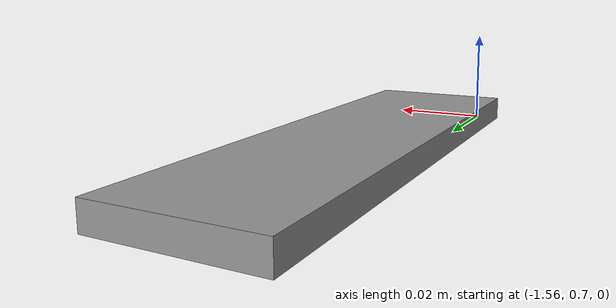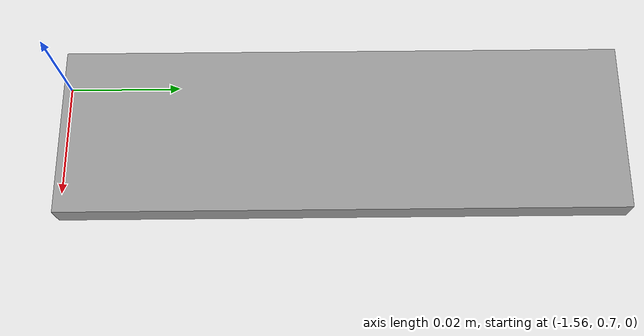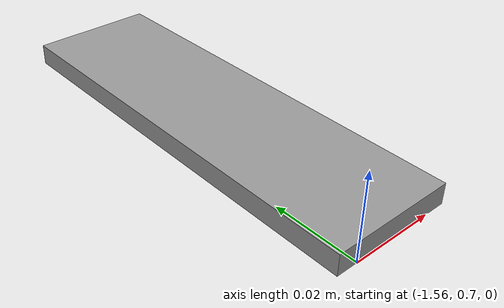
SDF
<sdf version='1.7'>
  <model name='traffic_light'>
    <joint name='base_joint' type='fixed'>
      <pose relative_to='__model__'>-1.55 0.75 0.0025 0 -0 1.57</pose>
      <parent>world</parent>
      <child>base_link</child>
    </joint>
    <link name='base_link'>
      <pose relative_to='base_joint'>0 0 0 0 -0 0</pose>
      <inertial>
        <pose>0 0 0 0 -0 0</pose>
        <mass>0.1</mass>
        <inertia>
          <ixx>0.0001</ixx>
          <ixy>0</ixy>
          <ixz>0</ixz>
          <iyy>0.0001</iyy>
          <iyz>0</iyz>
          <izz>0.0001</izz>
        </inertia>
      </inertial>
      <collision name='base_link_collision'>
        <pose>0 0 0 0 -0 0</pose>
        <geometry>
          <box>
            <size>0.1 0.03 0.005</size>
          </box>
        </geometry>
        <surface>
          <contact>
            <ode/>
          </contact>
          <friction>
            <ode/>
          </friction>
        </surface>
      </collision>
      <visual name='base_link_visual'>
        <pose>0 0 0 0 -0 0</pose>
        <geometry>
          <box>
            <size>0.1 0.03 0.005</size>
          </box>
        </geometry>
        <material>
          <script>
            <name>Gazebo/Gray</name>
            <uri>file://media/materials/scripts/gazebo.material</uri>
          </script>
        </material>
      </visual>
    </link>
    <joint name='base_to_light_green' type='prismatic'>
      <pose relative_to='base_link'>0.0333 0 0 0 -0 0</pose>
      <parent>base_link</parent>
      <child>light_green</child>
      <axis>
        <xyz>0 0 1</xyz>
        <limit>
          <lower>0</lower>
          <upper>0.002</upper>
          <effort>1000</effort>
          <velocity>1000</velocity>
        </limit>
        <dynamics>
          <damping>0</damping>
          <friction>0.1</friction>
          <spring_reference>0</spring_reference>
          <spring_stiffness>0</spring_stiffness>
        </dynamics>
      </axis>
    </joint>
    <link name='light_green'>
      <pose relative_to='base_to_light_green'>0 0 0 0 -0 0</pose>
      <inertial>
        <pose>0 0 0 0 -0 0</pose>
        <mass>0.01</mass>
        <inertia>
          <ixx>0.0001</ixx>
          <ixy>0</ixy>
          <ixz>0</ixz>
          <iyy>0.0001</iyy>
          <iyz>0</iyz>
          <izz>0.0001</izz>
        </inertia>
      </inertial>
      <visual name='light_green_visual'>
        <pose>0 0 0 0 -0 0</pose>
        <geometry>
          <cylinder>
            <length>0.003</length>
            <radius>0.009</radius>
          </cylinder>
        </geometry>
        <material>
          <script>
            <name>Gazebo/Green</name>
            <uri>file://media/materials/scripts/gazebo.material</uri>
          </script>
        </material>
      </visual>
    </link>
    <joint name='base_to_light_red' type='prismatic'>
      <pose relative_to='base_link'>-0.0333 0 0 0 -0 0</pose>
      <parent>base_link</parent>
      <child>light_red</child>
      <axis>
        <xyz>0 0 1</xyz>
        <limit>
          <lower>0</lower>
          <upper>0.002</upper>
          <effort>1000</effort>
          <velocity>1000</velocity>
        </limit>
        <dynamics>
          <damping>0</damping>
          <friction>0.1</friction>
          <spring_reference>0</spring_reference>
          <spring_stiffness>0</spring_stiffness>
        </dynamics>
      </axis>
    </joint>
    <link name='light_red'>
      <pose relative_to='base_to_light_red'>0 0 0 0 -0 0</pose>
      <inertial>
        <pose>0 0 0 0 -0 0</pose>
        <mass>0.01</mass>
        <inertia>
          <ixx>0.0001</ixx>
          <ixy>0</ixy>
          <ixz>0</ixz>
          <iyy>0.0001</iyy>
          <iyz>0</iyz>
          <izz>0.0001</izz>
        </inertia>
      </inertial>
      <visual name='light_red_visual'>
        <pose>0 0 0 0 -0 0</pose>
        <geometry>
          <cylinder>
            <length>0.003</length>
            <radius>0.009</radius>
          </cylinder>
        </geometry>
        <material>
          <script>
            <name>Gazebo/Red</name>
            <uri>file://media/materials/scripts/gazebo.material</uri>
          </script>
        </material>
      </visual>
    </link>
    <joint name='base_to_light_yellow' type='prismatic'>
      <pose relative_to='base_link'>0 0 0 0 -0 0</pose>
      <parent>base_link</parent>
      <child>light_yellow</child>
      <axis>
        <xyz>0 0 1</xyz>
        <limit>
          <lower>0</lower>
          <upper>0.002</upper>
          <effort>1000</effort>
          <velocity>1000</velocity>
        </limit>
        <dynamics>
          <damping>0</damping>
          <friction>0.1</friction>
          <spring_reference>0</spring_reference>
          <spring_stiffness>0</spring_stiffness>
        </dynamics>
      </axis>
    </joint>
    <link name='light_yellow'>
      <pose relative_to='base_to_light_yellow'>0 0 0 0 -0 0</pose>
      <inertial>
        <pose>0 0 0 0 -0 0</pose>
        <mass>0.01</mass>
        <inertia>
          <ixx>0.0001</ixx>
          <ixy>0</ixy>
          <ixz>0</ixz>
          <iyy>0.0001</iyy>
          <iyz>0</iyz>
          <izz>0.0001</izz>
        </inertia>
      </inertial>
      <visual name='light_yellow_visual'>
        <pose>0 0 0 0 -0 0</pose>
        <geometry>
          <cylinder>
            <length>0.003</length>
            <radius>0.009</radius>
          </cylinder>
        </geometry>
        <material>
          <script>
            <name>Gazebo/Yellow</name>
            <uri>file://media/materials/scripts/gazebo.material</uri>
          </script>
        </material>
      </visual>
    </link>
  </model>
</sdf>
